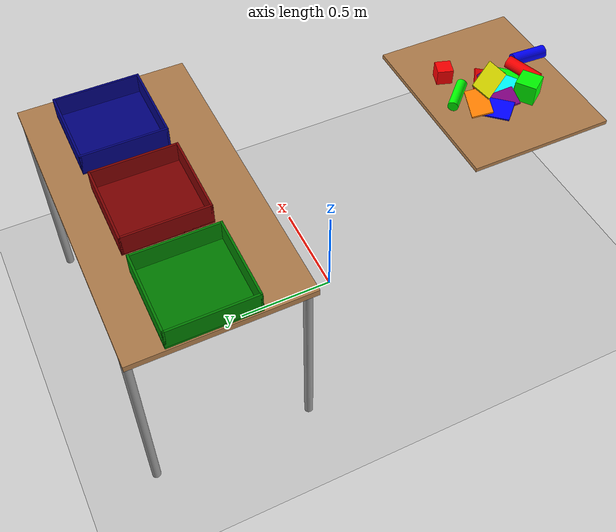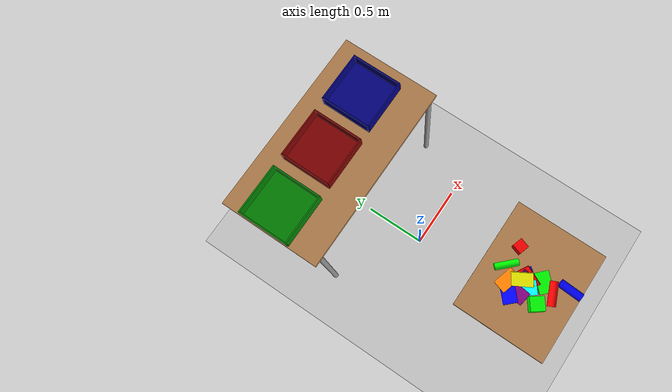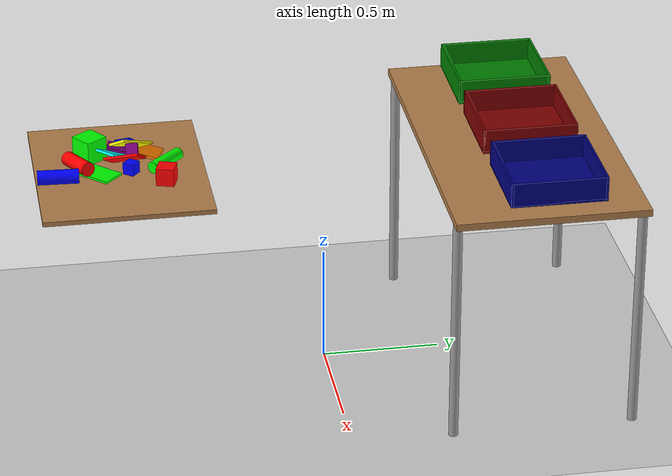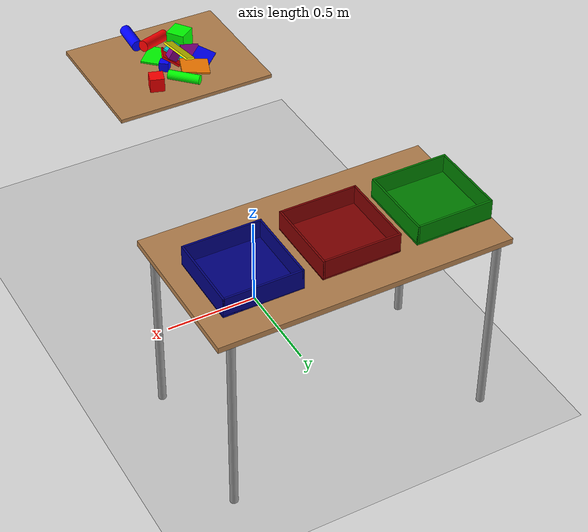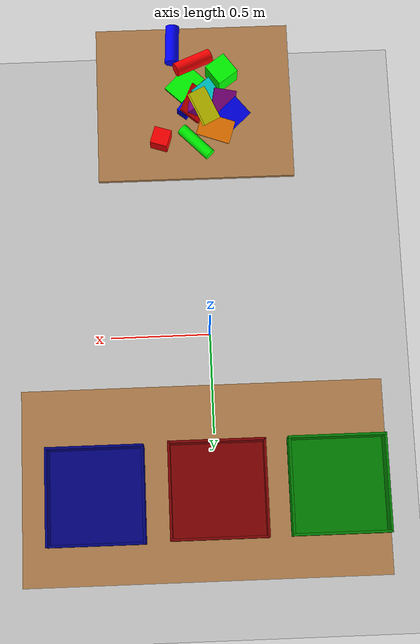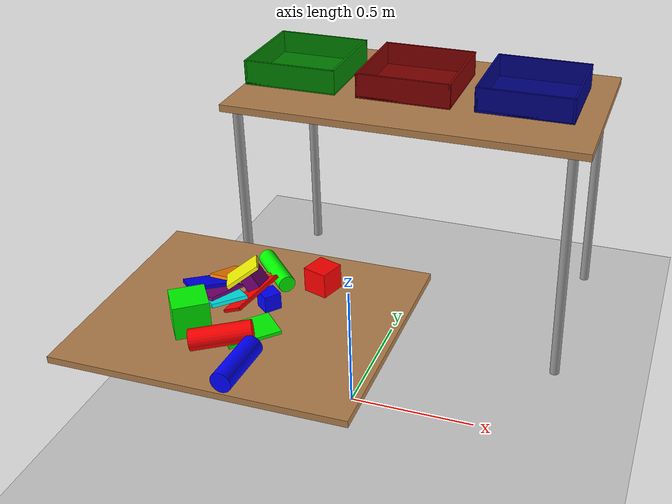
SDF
<sdf version="1.7">
 <world name="default">
  <light name="sun" type="directional">
   <pose>0 0 10 0 -0 0</pose>
   <diffuse>0.8 0.8 0.8 1</diffuse>
   <specular>0.2 0.2 0.2 1</specular>
   <attenuation>
    <range>1000</range>
    <constant>0.9</constant>
    <linear>0.01</linear>
    <quadratic>0.001</quadratic>
   </attenuation>
   <direction>-0.5 0.1 -0.9</direction>
   <spot><inner_angle>0</inner_angle><outer_angle>0</outer_angle><falloff>0</falloff></spot>
  </light>
  <model name="ground_plane">
   <static>1</static>
   <link name="link">
    <collision name="collision">
     <geometry><plane><normal>0 0 1</normal><size>100 100</size></plane></geometry>
     <surface><friction><ode><mu>100</mu><mu2>50</mu2></ode></friction></surface>
    </collision>
    <visual name="visual">
     <cast_shadows>0</cast_shadows>
     <geometry><plane><normal>0 0 1</normal><size>100 100</size></plane></geometry>
     <material>
      <script><uri>file://media/materials/scripts/gazebo.material</uri><name>Gazebo/Grey</name></script>
     </material>
    </visual>
   </link>
  </model>
  <gravity>0 0 -9.8</gravity>
  <magnetic_field>6e-06 2.3e-05 -4.2e-05</magnetic_field>
  <atmosphere type="adiabatic"/>
  <physics type="ode">
   <max_step_size>0.001</max_step_size>
   <real_time_factor>1</real_time_factor>
   <real_time_update_rate>1000</real_time_update_rate>
  </physics>
  <scene><ambient>0.4 0.4 0.4 1</ambient><background>0.7 0.7 0.7 1</background><shadows>1</shadows></scene>
  <audio><device>default</device></audio>
  <spherical_coordinates>
   <surface_model>EARTH_WGS84</surface_model>
   <latitude_deg>0</latitude_deg>
   <longitude_deg>0</longitude_deg>
   <elevation>0</elevation>
   <heading_deg>0</heading_deg>
  </spherical_coordinates>
  <model name="table">
   <static>1</static>
   <link name="link">
    <collision name="surface">
     <pose>0 0 1 0 -0 0</pose>
     <geometry><box><size>1.5 0.8 0.03</size></box></geometry>
     <surface>
      <friction><ode><mu>10</mu><mu2>5</mu2></ode></friction>
      <contact><ode><soft_cfm>0.0001</soft_cfm><soft_erp>0.4</soft_erp><kp>1e+06</kp><kd>10</kd></ode></contact>
     </surface>
    </collision>
    <visual name="visual1">
     <pose>0 0 1 0 -0 0</pose>
     <geometry><box><size>1.5 0.8 0.03</size></box></geometry>
     <material>
      <script><uri>file://media/materials/scripts/gazebo.material</uri><name>Gazebo/Wood</name></script>
     </material>
    </visual>
    <collision name="front_left_leg">
     <pose>0.68 0.38 0.5 0 -0 0</pose>
     <geometry><cylinder><radius>0.02</radius><length>1</length></cylinder></geometry>
    </collision>
    <visual name="front_left_leg">
     <pose>0.68 0.38 0.5 0 -0 0</pose>
     <geometry><cylinder><radius>0.02</radius><length>1</length></cylinder></geometry>
     <material>
      <script><uri>file://media/materials/scripts/gazebo.material</uri><name>Gazebo/Grey</name></script>
     </material>
    </visual>
    <collision name="front_right_leg">
     <pose>0.68 -0.38 0.5 0 -0 0</pose>
     <geometry><cylinder><radius>0.02</radius><length>1</length></cylinder></geometry>
    </collision>
    <visual name="front_right_leg">
     <pose>0.68 -0.38 0.5 0 -0 0</pose>
     <geometry><cylinder><radius>0.02</radius><length>1</length></cylinder></geometry>
     <material>
      <script><uri>file://media/materials/scripts/gazebo.material</uri><name>Gazebo/Grey</name></script>
     </material>
    </visual>
    <collision name="back_right_leg">
     <pose>-0.68 -0.38 0.5 0 -0 0</pose>
     <geometry><cylinder><radius>0.02</radius><length>1</length></cylinder></geometry>
    </collision>
    <visual name="back_right_leg">
     <pose>-0.68 -0.38 0.5 0 -0 0</pose>
     <geometry><cylinder><radius>0.02</radius><length>1</length></cylinder></geometry>
     <material>
      <script><uri>file://media/materials/scripts/gazebo.material</uri><name>Gazebo/Grey</name></script>
     </material>
    </visual>
    <collision name="back_left_leg">
     <pose>-0.68 0.38 0.5 0 -0 0</pose>
     <geometry><cylinder><radius>0.02</radius><length>1</length></cylinder></geometry>
    </collision>
    <visual name="back_left_leg">
     <pose>-0.68 0.38 0.5 0 -0 0</pose>
     <geometry><cylinder><radius>0.02</radius><length>1</length></cylinder></geometry>
     <material>
      <script><uri>file://media/materials/scripts/gazebo.material</uri><name>Gazebo/Grey</name></script>
     </material>
    </visual>
    <inertial>
     <inertia><ixx>1</ixx><ixy>0</ixy><ixz>0</ixz><iyy>1</iyy><iyz>0</iyz><izz>1</izz></inertia>
     <mass>50</mass>
    </inertial>
   </link>
   <pose>0.056083 0.801191 -1.2e-05 0 -0 2.5e-05</pose>
  </model>
  <plugin name="gazebo_link_attacher" filename="libgazebo_link_attacher.so"/>
  <plugin name="gazebo_ros_state" filename="libgazebo_ros_state.so">
   <namespace>/gazebo</namespace>
   <update_rate>100</update_rate>
  </plugin>
  <model name="cube_b">
   <link name="link_2">
    <inertial>
     <mass>2</mass>
     <inertia>
      <ixx>0.00083333</ixx>
      <ixy>0</ixy>
      <ixz>0</ixz>
      <iyy>0.00083333</iyy>
      <iyz>0</iyz>
      <izz>0.00083333</izz>
     </inertia>
    </inertial>
    <visual name="visual">
     <geometry><box><size>0.05 0.05 0.05</size></box></geometry>
     <material>
      <lighting>1</lighting>
      <script><uri>file://media/materials/scripts/gazebo.material</uri><name>Gazebo/Grey</name></script>
      <ambient>0 0 1 1</ambient>
      <diffuse>0 0 1 1</diffuse>
      <specular>0 0 0 1</specular>
      <emissive>0 0 0 1</emissive>
      <shader type="vertex"><normal_map>__default__</normal_map></shader>
     </material>
    </visual>
    <collision name="collision">
     <geometry><box><size>0.05 0.05 0.05</size></box></geometry>
     <surface>
      <friction>
       <ode><mu>0.8</mu><mu2>0.8</mu2><fdir1>0 0 0</fdir1><slip1>0</slip1><slip2>0</slip2></ode>
       <torsional>
        <coefficient>1</coefficient>
        <patch_radius>0</patch_radius>
        <surface_radius>0</surface_radius>
        <use_patch_radius>1</use_patch_radius>
        <ode><slip>0</slip></ode>
       </torsional>
      </friction>
      <bounce><restitution_coefficient>0</restitution_coefficient><threshold>1e+06</threshold></bounce>
      <contact>
       <collide_without_contact>0</collide_without_contact>
       <collide_without_contact_bitmask>1</collide_without_contact_bitmask>
       <collide_bitmask>1</collide_bitmask>
       <ode>
        <soft_cfm>0.0001</soft_cfm>
        <soft_erp>0.4</soft_erp>
        <kp>1e+06</kp>
        <kd>10</kd>
        <max_vel>0.01</max_vel>
        <min_depth>0</min_depth>
       </ode>
      </contact>
     </surface>
    </collision>
   </link>
   <static>0</static>
   <allow_auto_disable>0</allow_auto_disable>
   <pose>0.080925 -0.814855 1.0108 -1.57407 -0.004848 0.893178</pose>
  </model>
  <model name="cube_g">
   <link name="link_2">
    <inertial>
     <mass>2</mass>
     <inertia>
      <ixx>0.00333333</ixx>
      <iyy>0.00333333</iyy>
      <izz>0.00333333</izz>
      <ixy>0</ixy>
      <ixz>0</ixz>
      <iyz>0</iyz>
     </inertia>
    </inertial>
    <visual name="visual">
     <geometry><box><size>0.1 0.1 0.1</size></box></geometry>
     <material>
      <lighting>1</lighting>
      <script><uri>file://media/materials/scripts/gazebo.material</uri><name>Gazebo/Grey</name></script>
      <ambient>0 1 0 1</ambient>
      <diffuse>0 1 0 1</diffuse>
      <specular>0 0 0 1</specular>
      <emissive>0 0 0 1</emissive>
      <shader type="vertex"><normal_map>__default__</normal_map></shader>
     </material>
    </visual>
    <collision name="collision">
     <geometry><box><size>0.1 0.1 0.1</size></box></geometry>
     <surface>
      <friction>
       <ode><mu>0.8</mu><mu2>0.8</mu2><fdir1>0 0 0</fdir1><slip1>0</slip1><slip2>0</slip2></ode>
       <torsional>
        <coefficient>1</coefficient>
        <patch_radius>0</patch_radius>
        <surface_radius>0</surface_radius>
        <use_patch_radius>1</use_patch_radius>
        <ode><slip>0</slip></ode>
       </torsional>
      </friction>
      <bounce><restitution_coefficient>0</restitution_coefficient><threshold>1e+06</threshold></bounce>
      <contact>
       <collide_without_contact>0</collide_without_contact>
       <collide_without_contact_bitmask>1</collide_without_contact_bitmask>
       <collide_bitmask>1</collide_bitmask>
       <ode>
        <soft_cfm>0.0001</soft_cfm>
        <soft_erp>0.4</soft_erp>
        <kp>1e+06</kp>
        <kd>10</kd>
        <max_vel>0.01</max_vel>
        <min_depth>0</min_depth>
       </ode>
      </contact>
     </surface>
    </collision>
   </link>
   <static>0</static>
   <allow_auto_disable>0</allow_auto_disable>
   <pose>-0.082661 -0.971267 1.0351 -0.001486 -0.004054 0.622925</pose>
  </model>
  <model name="cube_r">
   <link name="link_2">
    <inertial>
     <mass>2</mass>
     <inertia>
      <ixx>0.001875</ixx>
      <ixy>0</ixy>
      <ixz>0</ixz>
      <iyy>0.001875</iyy>
      <iyz>0</iyz>
      <izz>0.001875</izz>
     </inertia>
    </inertial>
    <visual name="visual">
     <geometry><box><size>0.075 0.075 0.075</size></box></geometry>
     <material>
      <lighting>1</lighting>
      <script><uri>file://media/materials/scripts/gazebo.material</uri><name>Gazebo/Grey</name></script>
      <ambient>1 0 0 1</ambient>
      <diffuse>1 0 0 1</diffuse>
      <specular>0 0 0 1</specular>
      <emissive>0 0 0 1</emissive>
      <shader type="vertex"><normal_map>__default__</normal_map></shader>
     </material>
    </visual>
    <collision name="collision">
     <geometry><box><size>0.075 0.075 0.075</size></box></geometry>
     <surface>
      <friction>
       <ode><mu>0.8</mu><mu2>0.8</mu2><fdir1>0 0 0</fdir1><slip1>0</slip1><slip2>0</slip2></ode>
       <torsional>
        <coefficient>1</coefficient>
        <patch_radius>0</patch_radius>
        <surface_radius>0</surface_radius>
        <use_patch_radius>1</use_patch_radius>
        <ode><slip>0</slip></ode>
       </torsional>
      </friction>
      <bounce><restitution_coefficient>0</restitution_coefficient><threshold>1e+06</threshold></bounce>
      <contact>
       <collide_without_contact>0</collide_without_contact>
       <collide_without_contact_bitmask>1</collide_without_contact_bitmask>
       <collide_bitmask>1</collide_bitmask>
       <ode>
        <soft_cfm>0.0001</soft_cfm>
        <soft_erp>0.4</soft_erp>
        <kp>1e+06</kp>
        <kd>10</kd>
        <max_vel>0.01</max_vel>
        <min_depth>0</min_depth>
       </ode>
      </contact>
     </surface>
    </collision>
   </link>
   <static>0</static>
   <allow_auto_disable>0</allow_auto_disable>
   <pose>0.190349 -0.680873 1.02406 -3.13798 0.002338 -1.88051</pose>
  </model>
  <model name="cylinder_r">
   <link name="link_0">
    <inertial>
     <mass>0.2</mass>
     <inertia>
      <ixx>0.0005267</ixx>
      <ixy>0</ixy>
      <ixz>0</ixz>
      <iyy>0.0005267</iyy>
      <iyz>0</iyz>
      <izz>9e-05</izz>
     </inertia>
    </inertial>
    <visual name="visual">
     <geometry><cylinder><radius>0.03</radius><length>0.17</length></cylinder></geometry>
     <material>
      <lighting>1</lighting>
      <script><uri>file://media/materials/scripts/gazebo.material</uri><name>Gazebo/Grey</name></script>
      <ambient>1 0 0 1</ambient>
      <diffuse>1 0 0 1</diffuse>
      <specular>0 0 0 1</specular>
      <emissive>0 0 0 1</emissive>
      <shader type="vertex"><normal_map>__default__</normal_map></shader>
     </material>
    </visual>
    <collision name="collision">
     <geometry><cylinder><radius>0.03</radius><length>0.17</length></cylinder></geometry>
     <surface>
      <friction>
       <ode><mu>0.5</mu><mu2>0.5</mu2><fdir1>0 0 0</fdir1><slip1>0</slip1><slip2>0</slip2></ode>
       <torsional>
        <coefficient>1</coefficient>
        <patch_radius>0</patch_radius>
        <surface_radius>0</surface_radius>
        <use_patch_radius>1</use_patch_radius>
        <ode><slip>0</slip></ode>
       </torsional>
      </friction>
      <bounce><restitution_coefficient>0</restitution_coefficient><threshold>1e+06</threshold></bounce>
      <contact>
       <collide_without_contact>0</collide_without_contact>
       <collide_without_contact_bitmask>1</collide_without_contact_bitmask>
       <collide_bitmask>1</collide_bitmask>
       <ode>
        <soft_cfm>0.0001</soft_cfm>
        <soft_erp>0.4</soft_erp>
        <kp>1e+06</kp>
        <kd>10</kd>
        <max_vel>0.01</max_vel>
        <min_depth>0</min_depth>
       </ode>
      </contact>
     </surface>
    </collision>
   </link>
   <static>0</static>
   <allow_auto_disable>0</allow_auto_disable>
   <pose>0.039849 -1.02988 1.02427 -1.44352 0.542028 -1.07566</pose>
  </model>
  <model name="cylinder_b">
   <link name="link_0">
    <inertial>
     <mass>0.2</mass>
     <inertia>
      <ixx>0.0005267</ixx>
      <ixy>0</ixy>
      <ixz>0</ixz>
      <iyy>0.0005267</iyy>
      <iyz>0</iyz>
      <izz>9e-05</izz>
     </inertia>
    </inertial>
    <visual name="visual">
     <geometry><cylinder><radius>0.03</radius><length>0.17</length></cylinder></geometry>
     <material>
      <lighting>1</lighting>
      <ambient>0 0 1 1</ambient>
      <diffuse>0 0 1 1</diffuse>
      <specular>0.1 0.1 0.1 1</specular>
      <emissive>0 0 0 1</emissive>
      <shader type="vertex"><normal_map>__default__</normal_map></shader>
     </material>
    </visual>
    <collision name="collision">
     <geometry><cylinder><radius>0.03</radius><length>0.17</length></cylinder></geometry>
     <surface>
      <friction>
       <ode><mu>0.4</mu><mu2>0.4</mu2><fdir1>0 0 0</fdir1><slip1>0</slip1><slip2>0</slip2></ode>
       <torsional>
        <coefficient>1</coefficient>
        <patch_radius>0</patch_radius>
        <surface_radius>0</surface_radius>
        <use_patch_radius>1</use_patch_radius>
        <ode><slip>0</slip></ode>
       </torsional>
      </friction>
      <bounce><restitution_coefficient>0</restitution_coefficient><threshold>1e+06</threshold></bounce>
      <contact>
       <collide_without_contact>0</collide_without_contact>
       <collide_without_contact_bitmask>1</collide_without_contact_bitmask>
       <collide_bitmask>1</collide_bitmask>
       <ode>
        <soft_cfm>0.0001</soft_cfm>
        <soft_erp>0.4</soft_erp>
        <kp>1e+06</kp>
        <kd>10</kd>
        <max_vel>0.01</max_vel>
        <min_depth>0</min_depth>
       </ode>
      </contact>
     </surface>
    </collision>
   </link>
   <static>0</static>
   <allow_auto_disable>0</allow_auto_disable>
   <pose>0.128621 -1.11912 1.01581 1.57327 -1.00004 -0.052902</pose>
  </model>
  <model name="cylinder_g">
   <link name="link_0">
    <inertial>
     <mass>0.2</mass>
     <inertia>
      <ixx>0.0005129</ixx>
      <ixy>0</ixy>
      <ixz>0</ixz>
      <iyy>0.0005129</iyy>
      <iyz>0</iyz>
      <izz>6.25e-05</izz>
     </inertia>
    </inertial>
    <visual name="visual">
     <geometry><cylinder><radius>0.025</radius><length>0.17</length></cylinder></geometry>
     <material>
      <lighting>1</lighting>
      <ambient>0 1 0 1</ambient>
      <diffuse>0 1 0 1</diffuse>
      <specular>0.1 0.1 0.1 1</specular>
      <emissive>0 0 0 1</emissive>
      <shader type="vertex"><normal_map>__default__</normal_map></shader>
     </material>
    </visual>
    <collision name="collision">
     <geometry><cylinder><radius>0.025</radius><length>0.17</length></cylinder></geometry>
     <surface>
      <friction>
       <ode><mu>0.5</mu><mu2>0.5</mu2><fdir1>0 0 0</fdir1><slip1>0</slip1><slip2>0</slip2></ode>
       <torsional>
        <coefficient>1</coefficient>
        <patch_radius>0</patch_radius>
        <surface_radius>0</surface_radius>
        <use_patch_radius>1</use_patch_radius>
        <ode><slip>0</slip></ode>
       </torsional>
      </friction>
      <bounce><restitution_coefficient>0</restitution_coefficient><threshold>1e+06</threshold></bounce>
      <contact>
       <collide_without_contact>0</collide_without_contact>
       <collide_without_contact_bitmask>1</collide_without_contact_bitmask>
       <collide_bitmask>1</collide_bitmask>
       <ode>
        <soft_cfm>0.0001</soft_cfm>
        <soft_erp>0.4</soft_erp>
        <kp>1e+06</kp>
        <kd>10</kd>
        <max_vel>0.01</max_vel>
        <min_depth>0</min_depth>
       </ode>
      </contact>
     </surface>
    </collision>
   </link>
   <static>0</static>
   <allow_auto_disable>0</allow_auto_disable>
   <pose>0.0389 -0.66799 1.01095 -1.57791 -1.27144 0.780558</pose>
  </model>
  <model name="cuboid_r">
   <link name="link">
    <inertial>
     <mass>2</mass>
     <inertia>
      <ixx>0.001683</ixx>
      <iyy>0.003767</iyy>
      <izz>0.005417</izz>
      <ixy>0</ixy>
      <ixz>0</ixz>
      <iyz>0</iyz>
     </inertia>
    </inertial>
    <visual name="visual">
     <geometry><box><size>0.15 0.1 0.01</size></box></geometry>
     <material><ambient>1 0 0 1</ambient><diffuse>1 0 0 1</diffuse><specular>0.1 0.1 0.1 1</specular></material>
    </visual>
    <collision name="collision">
     <geometry><box><size>0.15 0.1 0.01</size></box></geometry>
     <surface>
      <friction>
       <ode><mu>0.6</mu><mu2>0.6</mu2><fdir1>0 0 0</fdir1><slip1>0</slip1><slip2>0</slip2></ode>
       <torsional>
        <coefficient>1</coefficient>
        <patch_radius>0</patch_radius>
        <surface_radius>0</surface_radius>
        <use_patch_radius>1</use_patch_radius>
        <ode><slip>0</slip></ode>
       </torsional>
      </friction>
      <bounce><restitution_coefficient>0</restitution_coefficient><threshold>1e+06</threshold></bounce>
      <contact>
       <collide_without_contact>0</collide_without_contact>
       <collide_without_contact_bitmask>1</collide_without_contact_bitmask>
       <collide_bitmask>1</collide_bitmask>
       <ode>
        <soft_cfm>0.0001</soft_cfm>
        <soft_erp>0.4</soft_erp>
        <kp>1e+06</kp>
        <kd>10</kd>
        <max_vel>0.01</max_vel>
        <min_depth>0</min_depth>
       </ode>
      </contact>
     </surface>
    </collision>
   </link>
   <static>0</static>
   <allow_auto_disable>0</allow_auto_disable>
   <pose>0.035914 -0.836688 1.03351 0.56428 0.243463 -1.96015</pose>
  </model>
  <model name="cuboid_g">
   <link name="link">
    <inertial>
     <mass>2</mass>
     <inertia>
      <ixx>0.001683</ixx>
      <iyy>0.003767</iyy>
      <izz>0.005417</izz>
      <ixy>0</ixy>
      <ixz>0</ixz>
      <iyz>0</iyz>
     </inertia>
    </inertial>
    <visual name="visual">
     <geometry><box><size>0.15 0.1 0.01</size></box></geometry>
     <material><ambient>0 1 0 1</ambient><diffuse>0 1 0 1</diffuse><specular>0.1 0.1 0.1 1</specular></material>
    </visual>
    <collision name="collision">
     <geometry><box><size>0.15 0.1 0.01</size></box></geometry>
     <surface>
      <friction>
       <ode><mu>0.6</mu><mu2>0.6</mu2><fdir1>0 0 0</fdir1><slip1>0</slip1><slip2>0</slip2></ode>
       <torsional>
        <coefficient>1</coefficient>
        <patch_radius>0</patch_radius>
        <surface_radius>0</surface_radius>
        <use_patch_radius>1</use_patch_radius>
        <ode><slip>0</slip></ode>
       </torsional>
      </friction>
      <bounce><restitution_coefficient>0</restitution_coefficient><threshold>1e+06</threshold></bounce>
      <contact>
       <collide_without_contact>0</collide_without_contact>
       <collide_without_contact_bitmask>1</collide_without_contact_bitmask>
       <collide_bitmask>1</collide_bitmask>
       <ode>
        <soft_cfm>0.0001</soft_cfm>
        <soft_erp>0.4</soft_erp>
        <kp>1e+06</kp>
        <kd>10</kd>
        <max_vel>0.01</max_vel>
        <min_depth>0</min_depth>
       </ode>
      </contact>
     </surface>
    </collision>
   </link>
   <static>0</static>
   <allow_auto_disable>0</allow_auto_disable>
   <pose>0.079066 -0.945201 0.990801 0.002194 0.003705 -2.34071</pose>
  </model>
  <model name="cuboid_b">
   <link name="link">
    <inertial>
     <mass>2</mass>
     <inertia>
      <ixx>0.001683</ixx>
      <iyy>0.003767</iyy>
      <izz>0.005417</izz>
      <ixy>0</ixy>
      <ixz>0</ixz>
      <iyz>0</iyz>
     </inertia>
    </inertial>
    <visual name="visual">
     <geometry><box><size>0.15 0.1 0.01</size></box></geometry>
     <material><ambient>0 0 1 1</ambient><diffuse>0 0 1 1</diffuse><specular>0.1 0.1 0.1 1</specular></material>
    </visual>
    <collision name="collision">
     <geometry><box><size>0.15 0.1 0.01</size></box></geometry>
     <surface>
      <friction>
       <ode><mu>0.6</mu><mu2>0.6</mu2><fdir1>0 0 0</fdir1><slip1>0</slip1><slip2>0</slip2></ode>
       <torsional>
        <coefficient>1</coefficient>
        <patch_radius>0</patch_radius>
        <surface_radius>0</surface_radius>
        <use_patch_radius>1</use_patch_radius>
        <ode><slip>0</slip></ode>
       </torsional>
      </friction>
      <bounce><restitution_coefficient>0</restitution_coefficient><threshold>1e+06</threshold></bounce>
      <contact>
       <collide_without_contact>0</collide_without_contact>
       <collide_without_contact_bitmask>1</collide_without_contact_bitmask>
       <collide_bitmask>1</collide_bitmask>
       <ode>
        <soft_cfm>0.0001</soft_cfm>
        <soft_erp>0.4</soft_erp>
        <kp>1e+06</kp>
        <kd>10</kd>
        <max_vel>0.01</max_vel>
        <min_depth>0</min_depth>
       </ode>
      </contact>
     </surface>
    </collision>
   </link>
   <static>0</static>
   <allow_auto_disable>0</allow_auto_disable>
   <pose>-0.11584 -0.779343 1.00972 -0.262648 0.088996 0.723434</pose>
  </model>
  <model name="cuboid_purple">
   <link name="link">
    <inertial>
     <mass>2</mass>
     <inertia>
      <ixx>0.001683</ixx>
      <iyy>0.003767</iyy>
      <izz>0.005417</izz>
      <ixy>0</ixy>
      <ixz>0</ixz>
      <iyz>0</iyz>
     </inertia>
    </inertial>
    <visual name="visual">
     <geometry><box><size>0.15 0.1 0.01</size></box></geometry>
     <material>
      <ambient>0.5 0 0.5 1</ambient>
      <diffuse>0.5 0 0.5 1</diffuse>
      <specular>0.1 0.1 0.1 1</specular>
     </material>
    </visual>
    <collision name="collision">
     <geometry><box><size>0.15 0.1 0.01</size></box></geometry>
     <surface>
      <friction>
       <ode><mu>0.6</mu><mu2>0.6</mu2><fdir1>0 0 0</fdir1><slip1>0</slip1><slip2>0</slip2></ode>
       <torsional>
        <coefficient>1</coefficient>
        <patch_radius>0</patch_radius>
        <surface_radius>0</surface_radius>
        <use_patch_radius>1</use_patch_radius>
        <ode><slip>0</slip></ode>
       </torsional>
      </friction>
      <bounce><restitution_coefficient>0</restitution_coefficient><threshold>1e+06</threshold></bounce>
      <contact>
       <collide_without_contact>0</collide_without_contact>
       <collide_without_contact_bitmask>1</collide_without_contact_bitmask>
       <collide_bitmask>1</collide_bitmask>
       <ode>
        <soft_cfm>0.0001</soft_cfm>
        <soft_erp>0.4</soft_erp>
        <kp>1e+06</kp>
        <kd>10</kd>
        <max_vel>0.01</max_vel>
        <min_depth>0</min_depth>
       </ode>
      </contact>
     </surface>
    </collision>
   </link>
   <static>0</static>
   <allow_auto_disable>0</allow_auto_disable>
   <pose>-0.085119 -0.824535 1.01463 0.152732 -0.232633 -1.75304</pose>
  </model>
  <model name="cuboid_orange">
   <link name="link">
    <inertial>
     <mass>2</mass>
     <inertia>
      <ixx>0.001683</ixx>
      <iyy>0.003767</iyy>
      <izz>0.005417</izz>
      <ixy>0</ixy>
      <ixz>0</ixz>
      <iyz>0</iyz>
     </inertia>
    </inertial>
    <visual name="visual">
     <geometry><box><size>0.15 0.1 0.01</size></box></geometry>
     <material>
      <ambient>1 0.5 0 1</ambient>
      <diffuse>1 0.5 0 1</diffuse>
      <specular>0.1 0.1 0.1 1</specular>
     </material>
    </visual>
    <collision name="collision">
     <geometry><box><size>0.15 0.1 0.01</size></box></geometry>
     <surface>
      <friction>
       <ode><mu>0.6</mu><mu2>0.6</mu2><fdir1>0 0 0</fdir1><slip1>0</slip1><slip2>0</slip2></ode>
       <torsional>
        <coefficient>1</coefficient>
        <patch_radius>0</patch_radius>
        <surface_radius>0</surface_radius>
        <use_patch_radius>1</use_patch_radius>
        <ode><slip>0</slip></ode>
       </torsional>
      </friction>
      <bounce><restitution_coefficient>0</restitution_coefficient><threshold>1e+06</threshold></bounce>
      <contact>
       <collide_without_contact>0</collide_without_contact>
       <collide_without_contact_bitmask>1</collide_without_contact_bitmask>
       <collide_bitmask>1</collide_bitmask>
       <ode>
        <soft_cfm>0.0001</soft_cfm>
        <soft_erp>0.4</soft_erp>
        <kp>1e+06</kp>
        <kd>10</kd>
        <max_vel>0.01</max_vel>
        <min_depth>0</min_depth>
       </ode>
      </contact>
     </surface>
    </collision>
   </link>
   <static>0</static>
   <allow_auto_disable>0</allow_auto_disable>
   <pose>-0.049437 -0.728145 1.01399 -0.217229 -0.175387 -0.285775</pose>
  </model>
  <model name="cuboid_yellow">
   <link name="link">
    <inertial>
     <mass>2</mass>
     <inertia>
      <ixx>0.001683</ixx>
      <iyy>0.003767</iyy>
      <izz>0.005417</izz>
      <ixy>0</ixy>
      <ixz>0</ixz>
      <iyz>0</iyz>
     </inertia>
    </inertial>
    <visual name="visual">
     <geometry><box><size>0.15 0.1 0.01</size></box></geometry>
     <material><ambient>1 1 0 1</ambient><diffuse>1 1 0 1</diffuse><specular>0.1 0.1 0.1 1</specular></material>
    </visual>
    <collision name="collision">
     <geometry><box><size>0.15 0.1 0.01</size></box></geometry>
     <surface>
      <friction>
       <ode><mu>0.6</mu><mu2>0.6</mu2><fdir1>0 0 0</fdir1><slip1>0</slip1><slip2>0</slip2></ode>
       <torsional>
        <coefficient>1</coefficient>
        <patch_radius>0</patch_radius>
        <surface_radius>0</surface_radius>
        <use_patch_radius>1</use_patch_radius>
        <ode><slip>0</slip></ode>
       </torsional>
      </friction>
      <bounce><restitution_coefficient>0</restitution_coefficient><threshold>1e+06</threshold></bounce>
      <contact>
       <collide_without_contact>0</collide_without_contact>
       <collide_without_contact_bitmask>1</collide_without_contact_bitmask>
       <collide_bitmask>1</collide_bitmask>
       <ode>
        <soft_cfm>0.0001</soft_cfm>
        <soft_erp>0.4</soft_erp>
        <kp>1e+06</kp>
        <kd>10</kd>
        <max_vel>0.01</max_vel>
        <min_depth>0</min_depth>
       </ode>
      </contact>
     </surface>
    </collision>
   </link>
   <static>0</static>
   <allow_auto_disable>0</allow_auto_disable>
   <pose>-0.000993 -0.804844 1.07993 0.532161 -0.321536 -1.10057</pose>
  </model>
  <model name="cuboid_cyan">
   <link name="link">
    <inertial>
     <mass>2</mass>
     <inertia>
      <ixx>0.001683</ixx>
      <iyy>0.003767</iyy>
      <izz>0.005417</izz>
      <ixy>0</ixy>
      <ixz>0</ixz>
      <iyz>0</iyz>
     </inertia>
    </inertial>
    <visual name="visual">
     <geometry><box><size>0.15 0.1 0.01</size></box></geometry>
     <material><ambient>0 1 1 1</ambient><diffuse>0 1 1 1</diffuse><specular>0.1 0.1 0.1 1</specular></material>
    </visual>
    <collision name="collision">
     <geometry><box><size>0.15 0.1 0.01</size></box></geometry>
     <surface>
      <friction>
       <ode><mu>0.6</mu><mu2>0.6</mu2><fdir1>0 0 0</fdir1><slip1>0</slip1><slip2>0</slip2></ode>
       <torsional>
        <coefficient>1</coefficient>
        <patch_radius>0</patch_radius>
        <surface_radius>0</surface_radius>
        <use_patch_radius>1</use_patch_radius>
        <ode><slip>0</slip></ode>
       </torsional>
      </friction>
      <bounce><restitution_coefficient>0</restitution_coefficient><threshold>1e+06</threshold></bounce>
      <contact>
       <collide_without_contact>0</collide_without_contact>
       <collide_without_contact_bitmask>1</collide_without_contact_bitmask>
       <collide_bitmask>1</collide_bitmask>
       <ode>
        <soft_cfm>0.0001</soft_cfm>
        <soft_erp>0.4</soft_erp>
        <kp>1e+06</kp>
        <kd>10</kd>
        <max_vel>0.01</max_vel>
        <min_depth>0</min_depth>
       </ode>
      </contact>
     </surface>
    </collision>
   </link>
   <static>0</static>
   <allow_auto_disable>0</allow_auto_disable>
   <pose>-0.029373 -0.863217 1.0231 0.069134 -0.416682 -0.906699</pose>
  </model>
  <model name="workspace">
   <link name="link">
    <inertial>
     <mass>100</mass>
     <inertia><ixx>6.02417</ixx><ixy>0</ixy><ixz>0</ixz><iyy>4.08667</iyy><iyz>0</iyz><izz>10.1042</izz></inertia>
    </inertial>
    <visual name="visual">
     <geometry><box><size>0.7 0.85 0.02</size></box></geometry>
     <material>
      <script><name>Gazebo/Wood</name><uri>file://media/materials/scripts/gazebo.material</uri></script>
      <shader type="pixel"/>
     </material>
    </visual>
    <collision name="collision">
     <geometry><box><size>0.7 0.85 0.02</size></box></geometry>
     <surface>
      <friction>
       <ode><mu>100</mu><mu2>50</mu2><fdir1>0 0 0</fdir1><slip1>0</slip1><slip2>0</slip2></ode>
       <torsional>
        <coefficient>1</coefficient>
        <patch_radius>0</patch_radius>
        <surface_radius>0</surface_radius>
        <use_patch_radius>1</use_patch_radius>
        <ode><slip>0</slip></ode>
       </torsional>
      </friction>
      <bounce><restitution_coefficient>0</restitution_coefficient><threshold>1e+06</threshold></bounce>
      <contact>
       <collide_without_contact>0</collide_without_contact>
       <collide_without_contact_bitmask>1</collide_without_contact_bitmask>
       <collide_bitmask>1</collide_bitmask>
       <ode>
        <soft_cfm>0.0001</soft_cfm>
        <soft_erp>0.2</soft_erp>
        <kp>1e+13</kp>
        <kd>10</kd>
        <max_vel>0.01</max_vel>
        <min_depth>0</min_depth>
       </ode>
       <bullet>
        <split_impulse>1</split_impulse>
        <split_impulse_penetration_threshold>-0.01</split_impulse_penetration_threshold>
        <soft_cfm>0</soft_cfm>
        <soft_erp>0.2</soft_erp>
        <kp>1e+13</kp>
        <kd>1</kd>
       </bullet>
      </contact>
     </surface>
    </collision>
   </link>
   <static>1</static>
   <pose>0.0416 -0.859914 0.975746 -0.004154 -0.001127 1.57039</pose>
  </model>
  <model name="tray_red">
   <static>1</static>
   <link name="link">
    <collision name="base_collision">
     <pose>0 0 0.01 0 -0 0</pose>
     <geometry><box><size>0.4 0.4 0.01</size></box></geometry>
     <surface><contact><ode><mu>50</mu><mu2>50</mu2></ode></contact></surface>
    </collision>
    <visual name="base_visual">
     <pose>0 0 0.01 0 -0 0</pose>
     <geometry><box><size>0.4 0.4 0.01</size></box></geometry>
     <material>
      <ambient>1 0 0 1</ambient>
      <diffuse>0.5 0 0 1</diffuse>
      <specular>0 0 0 1</specular>
      <emissive>0 0 0 1</emissive>
      <shininess>100</shininess>
     </material>
    </visual>
    <collision name="front_collision">
     <pose>0 0.195 0.06 0 -0 0</pose>
     <geometry><box><size>0.4 0.01 0.1</size></box></geometry>
    </collision>
    <visual name="front_visual">
     <pose>0 0.195 0.06 0 -0 0</pose>
     <geometry><box><size>0.4 0.01 0.1</size></box></geometry>
     <material>
      <ambient>1 0 0 1</ambient>
      <diffuse>0.5 0 0 1</diffuse>
      <specular>0 0 0 1</specular>
      <emissive>0 0 0 1</emissive>
     </material>
    </visual>
    <collision name="back_collision">
     <pose>0 -0.195 0.06 0 -0 0</pose>
     <geometry><box><size>0.4 0.01 0.1</size></box></geometry>
    </collision>
    <visual name="back_visual">
     <pose>0 -0.195 0.06 0 -0 0</pose>
     <geometry><box><size>0.4 0.01 0.1</size></box></geometry>
     <material>
      <ambient>1 0 0 1</ambient>
      <diffuse>0.5 0 0 1</diffuse>
      <specular>0 0 0 1</specular>
      <emissive>0 0 0 1</emissive>
     </material>
    </visual>
    <collision name="left_collision">
     <pose>0.195 0 0.06 0 -0 0</pose>
     <geometry><box><size>0.01 0.4 0.1</size></box></geometry>
    </collision>
    <visual name="left_visual">
     <pose>0.195 0 0.06 0 -0 0</pose>
     <geometry><box><size>0.01 0.4 0.1</size></box></geometry>
     <material>
      <ambient>1 0 0 1</ambient>
      <diffuse>0.5 0 0 1</diffuse>
      <specular>0 0 0 1</specular>
      <emissive>0 0 0 1</emissive>
     </material>
    </visual>
    <collision name="right_collision">
     <pose>-0.195 0 0.06 0 -0 0</pose>
     <geometry><box><size>0.01 0.4 0.1</size></box></geometry>
    </collision>
    <visual name="right_visual">
     <pose>-0.195 0 0.06 0 -0 0</pose>
     <geometry><box><size>0.01 0.4 0.1</size></box></geometry>
     <material>
      <ambient>1 0 0 1</ambient>
      <diffuse>0.5 0 0 1</diffuse>
      <specular>0 0 0 1</specular>
      <emissive>0 0 0 1</emissive>
     </material>
    </visual>
    <inertial>
     <inertia><ixx>1</ixx><ixy>0</ixy><ixz>0</ixz><iyy>1</iyy><iyz>0</iyz><izz>1</izz></inertia>
     <mass>1</mass>
    </inertial>
   </link>
   <pose>0.003367 0.836815 1.00999 0 -0 0</pose>
  </model>
  <model name="tray_green">
   <static>1</static>
   <link name="link">
    <collision name="base_collision">
     <pose>0 0 0.01 0 -0 0</pose>
     <geometry><box><size>0.4 0.4 0.01</size></box></geometry>
     <surface><contact><ode><mu>50</mu><mu2>50</mu2></ode></contact></surface>
    </collision>
    <visual name="base_visual">
     <pose>0 0 0.01 0 -0 0</pose>
     <geometry><box><size>0.4 0.4 0.01</size></box></geometry>
     <material><ambient>0 1 0 1</ambient><diffuse>0 0.5 0 1</diffuse></material>
    </visual>
    <collision name="front_collision">
     <pose>0 0.195 0.06 0 -0 0</pose>
     <geometry><box><size>0.4 0.01 0.1</size></box></geometry>
    </collision>
    <visual name="front_visual">
     <pose>0 0.195 0.06 0 -0 0</pose>
     <geometry><box><size>0.4 0.01 0.1</size></box></geometry>
     <material><ambient>0 1 0 1</ambient><diffuse>0 0.5 0 1</diffuse></material>
    </visual>
    <collision name="back_collision">
     <pose>0 -0.195 0.06 0 -0 0</pose>
     <geometry><box><size>0.4 0.01 0.1</size></box></geometry>
    </collision>
    <visual name="back_visual">
     <pose>0 -0.195 0.06 0 -0 0</pose>
     <geometry><box><size>0.4 0.01 0.1</size></box></geometry>
     <material><ambient>0 1 0 1</ambient><diffuse>0 0.5 0 1</diffuse></material>
    </visual>
    <collision name="left_collision">
     <pose>0.195 0 0.06 0 -0 0</pose>
     <geometry><box><size>0.01 0.4 0.1</size></box></geometry>
    </collision>
    <visual name="left_visual">
     <pose>0.195 0 0.06 0 -0 0</pose>
     <geometry><box><size>0.01 0.4 0.1</size></box></geometry>
     <material><ambient>0 1 0 1</ambient><diffuse>0 0.5 0 1</diffuse></material>
    </visual>
    <collision name="right_collision">
     <pose>-0.195 0 0.06 0 -0 0</pose>
     <geometry><box><size>0.01 0.4 0.1</size></box></geometry>
    </collision>
    <visual name="right_visual">
     <pose>-0.195 0 0.06 0 -0 0</pose>
     <geometry><box><size>0.01 0.4 0.1</size></box></geometry>
     <material><ambient>0 1 0 1</ambient><diffuse>0 0.5 0 1</diffuse></material>
    </visual>
    <inertial>
     <inertia><ixx>1</ixx><ixy>0</ixy><ixz>0</ixz><iyy>1</iyy><iyz>0</iyz><izz>1</izz></inertia>
     <mass>1</mass>
    </inertial>
   </link>
   <pose>-0.487214 0.834657 1.00999 0 -0 0</pose>
  </model>
  <model name="tray_blue">
   <static>1</static>
   <link name="link">
    <collision name="base_collision">
     <pose>0 0 0.01 0 -0 0</pose>
     <geometry><box><size>0.4 0.4 0.01</size></box></geometry>
     <surface><contact><ode><mu>50</mu><mu2>50</mu2></ode></contact></surface>
    </collision>
    <visual name="base_visual">
     <pose>0 0 0.01 0 -0 0</pose>
     <geometry><box><size>0.4 0.4 0.01</size></box></geometry>
     <material><ambient>0 0 1 1</ambient><diffuse>0 0 0.5 1</diffuse></material>
    </visual>
    <collision name="front_collision">
     <pose>0 0.195 0.06 0 -0 0</pose>
     <geometry><box><size>0.4 0.01 0.1</size></box></geometry>
    </collision>
    <visual name="front_visual">
     <pose>0 0.195 0.06 0 -0 0</pose>
     <geometry><box><size>0.4 0.01 0.1</size></box></geometry>
     <material><ambient>0 0 1 1</ambient><diffuse>0 0 0.5 1</diffuse></material>
    </visual>
    <collision name="back_collision">
     <pose>0 -0.195 0.06 0 -0 0</pose>
     <geometry><box><size>0.4 0.01 0.1</size></box></geometry>
    </collision>
    <visual name="back_visual">
     <pose>0 -0.195 0.06 0 -0 0</pose>
     <geometry><box><size>0.4 0.01 0.1</size></box></geometry>
     <material><ambient>0 0 1 1</ambient><diffuse>0 0 0.5 1</diffuse></material>
    </visual>
    <collision name="left_collision">
     <pose>0.195 0 0.06 0 -0 0</pose>
     <geometry><box><size>0.01 0.4 0.1</size></box></geometry>
    </collision>
    <visual name="left_visual">
     <pose>0.195 0 0.06 0 -0 0</pose>
     <geometry><box><size>0.01 0.4 0.1</size></box></geometry>
     <material><ambient>0 0 1 1</ambient><diffuse>0 0 0.5 1</diffuse></material>
    </visual>
    <collision name="right_collision">
     <pose>-0.195 0 0.06 0 -0 0</pose>
     <geometry><box><size>0.01 0.4 0.1</size></box></geometry>
    </collision>
    <visual name="right_visual">
     <pose>-0.195 0 0.06 0 -0 0</pose>
     <geometry><box><size>0.01 0.4 0.1</size></box></geometry>
     <material><ambient>0 0 1 1</ambient><diffuse>0 0 0.5 1</diffuse></material>
    </visual>
    <inertial>
     <inertia><ixx>1</ixx><ixy>0</ixy><ixz>0</ixz><iyy>1</iyy><iyz>0</iyz><izz>1</izz></inertia>
     <mass>1</mass>
    </inertial>
   </link>
   <pose>0.500589 0.844197 1.00999 0 -0 0</pose>
  </model>
  <model name="cube_purple">
   <link name="link_2">
    <inertial>
     <mass>2</mass>
     <inertia>
      <ixx>0.00083333</ixx>
      <ixy>0</ixy>
      <ixz>0</ixz>
      <iyy>0.00083333</iyy>
      <iyz>0</iyz>
      <izz>0.00083333</izz>
     </inertia>
    </inertial>
    <visual name="visual">
     <geometry><box><size>0.05 0.05 0.05</size></box></geometry>
     <material>
      <lighting>1</lighting>
      <script><uri>file://media/materials/scripts/gazebo.material</uri><name>Gazebo/Grey</name></script>
      <ambient>0.5 0 0.5 1</ambient>
      <diffuse>0.5 0 0.5 1</diffuse>
      <specular>0.1 0.1 0.1 1</specular>
      <emissive>0 0 0 1</emissive>
      <shader type="vertex"><normal_map>__default__</normal_map></shader>
     </material>
    </visual>
    <collision name="collision">
     <geometry><box><size>0.05 0.05 0.05</size></box></geometry>
     <surface>
      <friction>
       <ode><mu>0.8</mu><mu2>0.8</mu2><fdir1>0 0 0</fdir1><slip1>0</slip1><slip2>0</slip2></ode>
       <torsional>
        <coefficient>1</coefficient>
        <patch_radius>0</patch_radius>
        <surface_radius>0</surface_radius>
        <use_patch_radius>1</use_patch_radius>
        <ode><slip>0</slip></ode>
       </torsional>
      </friction>
      <bounce><restitution_coefficient>0</restitution_coefficient><threshold>1e+06</threshold></bounce>
      <contact>
       <collide_without_contact>0</collide_without_contact>
       <collide_without_contact_bitmask>1</collide_without_contact_bitmask>
       <collide_bitmask>1</collide_bitmask>
       <ode>
        <soft_cfm>0.0001</soft_cfm>
        <soft_erp>0.4</soft_erp>
        <kp>1e+06</kp>
        <kd>10</kd>
        <max_vel>0.01</max_vel>
        <min_depth>0</min_depth>
       </ode>
      </contact>
     </surface>
    </collision>
   </link>
   <static>0</static>
   <allow_auto_disable>0</allow_auto_disable>
   <pose>0.032534 -0.805759 1.06695 0.608863 0.070621 -1.69628</pose>
  </model>
 </world>
</sdf>
